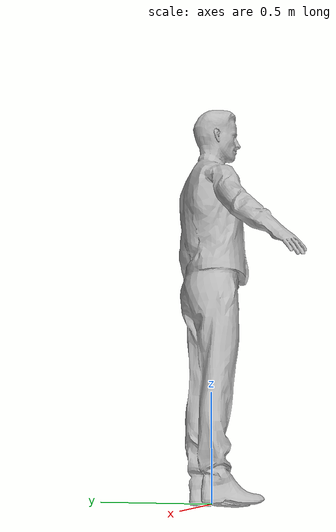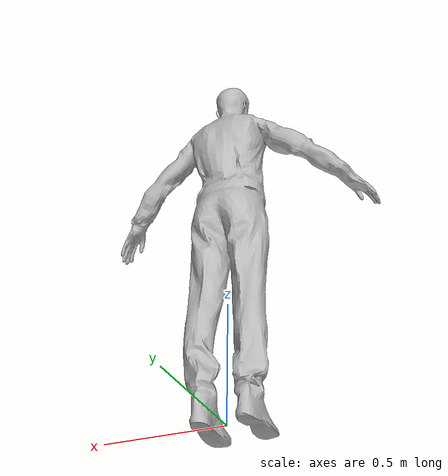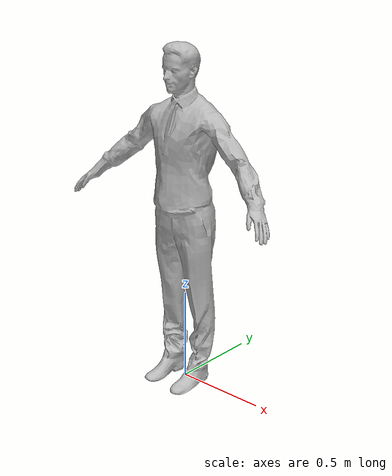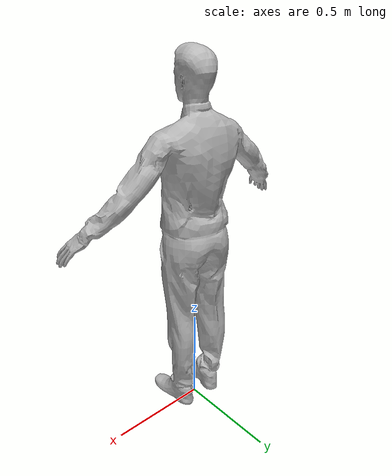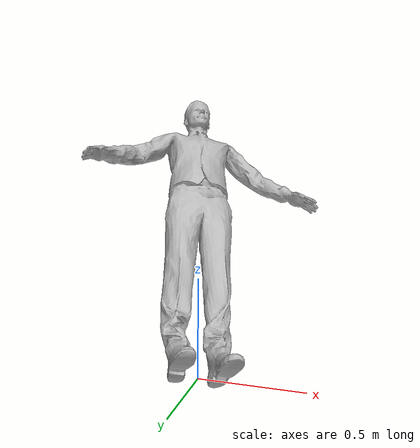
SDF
<?xml version="1.0" ?>
<sdf version="1.5">
  <model name="eric">
    <pose>0 0 0  0 0 0</pose>
    <static>true</static>
    <link name="body">
      <visual name="visual">
        <geometry>
          <mesh><uri>model://eric/eric.dae</uri></mesh>
        </geometry>
      </visual>
    </link>
  </model>
</sdf>
